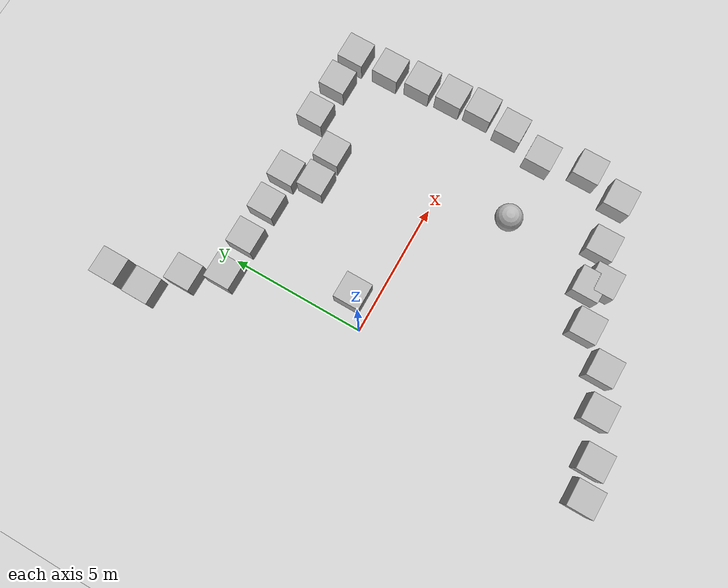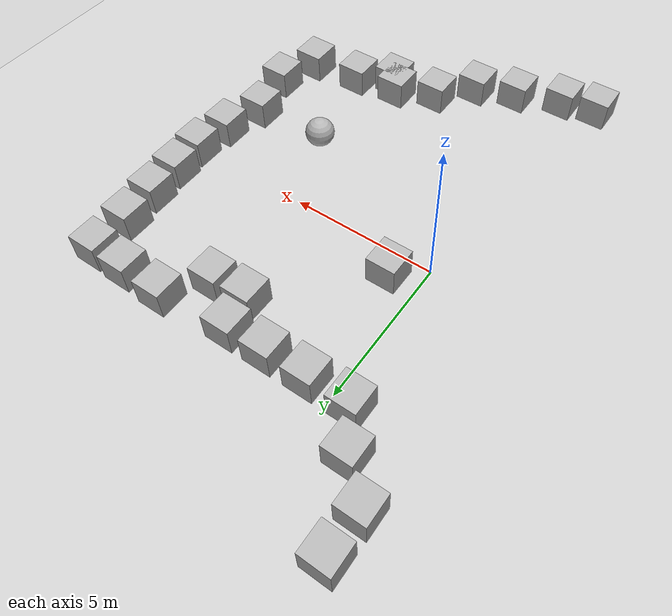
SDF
<sdf version='1.10'>
  <world name='empty'>
    <physics name='1ms' type='ignored'>
      <max_step_size>0.001</max_step_size>
      <real_time_factor>1</real_time_factor>
      <real_time_update_rate>1000</real_time_update_rate>
    </physics>
    <plugin name='gz::sim::systems::Physics' filename='gz-sim-physics-system'/>
    <plugin name='gz::sim::systems::UserCommands' filename='gz-sim-user-commands-system'/>
    <plugin name='gz::sim::systems::SceneBroadcaster' filename='gz-sim-scene-broadcaster-system'/>
    <plugin name='gz::sim::systems::Contact' filename='gz-sim-contact-system'/>
    <gravity>0 0 -9.8000000000000007</gravity>
    <magnetic_field>5.5644999999999998e-06 2.2875799999999999e-05 -4.2388400000000002e-05</magnetic_field>
    <atmosphere type='adiabatic'/>
    <scene>
      <ambient>0.400000006 0.400000006 0.400000006 1</ambient>
      <background>0.699999988 0.699999988 0.699999988 1</background>
      <shadows>true</shadows>
    </scene>
    <model name='ground_plane'>
      <static>true</static>
      <link name='link'>
        <collision name='collision'>
          <geometry>
            <plane>
              <normal>0 0 1</normal>
              <size>100 100</size>
            </plane>
          </geometry>
          <surface>
            <friction>
              <ode/>
            </friction>
            <bounce/>
            <contact/>
          </surface>
        </collision>
        <visual name='visual'>
          <geometry>
            <plane>
              <normal>0 0 1</normal>
              <size>100 100</size>
            </plane>
          </geometry>
          <material>
            <ambient>0.800000012 0.800000012 0.800000012 1</ambient>
            <diffuse>0.800000012 0.800000012 0.800000012 1</diffuse>
            <specular>0.800000012 0.800000012 0.800000012 1</specular>
          </material>
        </visual>
        <pose>0 0 0 0 0 0</pose>
        <inertial>
          <pose>0 0 0 0 0 0</pose>
          <mass>1</mass>
          <inertia>
            <ixx>1</ixx>
            <ixy>0</ixy>
            <ixz>0</ixz>
            <iyy>1</iyy>
            <iyz>0</iyz>
            <izz>1</izz>
          </inertia>
        </inertial>
        <enable_wind>false</enable_wind>
      </link>
      <pose>0 0 0 0 0 0</pose>
      <self_collide>false</self_collide>
    </model>
    <model name='box'>
      <pose>2.2569398311905928 5.0348688227095604 0.49999999990199806 6.2287739151293738e-22 9.3279666454713669e-22 -3.6315533669320137e-22</pose>
      <link name='box_link'>
        <inertial>
          <inertia>
            <ixx>0.16666</ixx>
            <ixy>0</ixy>
            <ixz>0</ixz>
            <iyy>0.16666</iyy>
            <iyz>0</iyz>
            <izz>0.16666</izz>
          </inertia>
          <mass>1</mass>
          <pose>0 0 0 0 0 0</pose>
        </inertial>
        <collision name='box_collision'>
          <geometry>
            <box>
              <size>1 1 1</size>
            </box>
          </geometry>
          <surface>
            <friction>
              <ode/>
            </friction>
            <bounce/>
            <contact/>
          </surface>
        </collision>
        <visual name='box_visual'>
          <geometry>
            <box>
              <size>1 1 1</size>
            </box>
          </geometry>
          <material>
            <ambient>0.300000012 0.300000012 0.300000012 1</ambient>
            <diffuse>0.699999988 0.699999988 0.699999988 1</diffuse>
            <specular>1 1 1 1</specular>
          </material>
        </visual>
        <pose>0 0 0 0 0 0</pose>
        <enable_wind>false</enable_wind>
      </link>
      <static>false</static>
      <self_collide>false</self_collide>
    </model>
    <model name='box_0'>
      <pose>0.83646005392074585 5.0257601737976074 0.49999999990199806 6.2287739151293738e-22 9.3279666454713669e-22 -3.6315533669320137e-22</pose>
      <link name='box_link'>
        <inertial>
          <inertia>
            <ixx>0.16666</ixx>
            <ixy>0</ixy>
            <ixz>0</ixz>
            <iyy>0.16666</iyy>
            <iyz>0</iyz>
            <izz>0.16666</izz>
          </inertia>
          <mass>1</mass>
          <pose>0 0 0 0 0 0</pose>
        </inertial>
        <collision name='box_collision'>
          <geometry>
            <box>
              <size>1 1 1</size>
            </box>
          </geometry>
          <surface>
            <friction>
              <ode/>
            </friction>
            <bounce/>
            <contact/>
          </surface>
        </collision>
        <visual name='box_visual'>
          <geometry>
            <box>
              <size>1 1 1</size>
            </box>
          </geometry>
          <material>
            <ambient>0.300000012 0.300000012 0.300000012 1</ambient>
            <diffuse>0.699999988 0.699999988 0.699999988 1</diffuse>
            <specular>1 1 1 1</specular>
          </material>
        </visual>
        <pose>0 0 0 0 0 0</pose>
        <enable_wind>false</enable_wind>
      </link>
      <static>false</static>
      <self_collide>false</self_collide>
    </model>
    <model name='box_1'>
      <pose>3.6105716166089934 5.0471821156153407 0.49999999990199806 6.2287739151293738e-22 9.3279666454713669e-22 -3.6315533669320137e-22</pose>
      <link name='box_link'>
        <inertial>
          <inertia>
            <ixx>0.16666</ixx>
            <ixy>0</ixy>
            <ixz>0</ixz>
            <iyy>0.16666</iyy>
            <iyz>0</iyz>
            <izz>0.16666</izz>
          </inertia>
          <mass>1</mass>
          <pose>0 0 0 0 0 0</pose>
        </inertial>
        <collision name='box_collision'>
          <geometry>
            <box>
              <size>1 1 1</size>
            </box>
          </geometry>
          <surface>
            <friction>
              <ode/>
            </friction>
            <bounce/>
            <contact/>
          </surface>
        </collision>
        <visual name='box_visual'>
          <geometry>
            <box>
              <size>1 1 1</size>
            </box>
          </geometry>
          <material>
            <ambient>0.300000012 0.300000012 0.300000012 1</ambient>
            <diffuse>0.699999988 0.699999988 0.699999988 1</diffuse>
            <specular>1 1 1 1</specular>
          </material>
        </visual>
        <pose>0 0 0 0 0 0</pose>
        <enable_wind>false</enable_wind>
      </link>
      <static>false</static>
      <self_collide>false</self_collide>
    </model>
    <model name='box_2'>
      <pose>3.8407888814182876 3.95952922372406 0.49999999990199806 1.380058407524736e-21 -4.0566468528448383e-21 6.0579372938736199e-22</pose>
      <link name='box_link'>
        <inertial>
          <inertia>
            <ixx>0.16666</ixx>
            <ixy>0</ixy>
            <ixz>0</ixz>
            <iyy>0.16666</iyy>
            <iyz>0</iyz>
            <izz>0.16666</izz>
          </inertia>
          <mass>1</mass>
          <pose>0 0 0 0 0 0</pose>
        </inertial>
        <collision name='box_collision'>
          <geometry>
            <box>
              <size>1 1 1</size>
            </box>
          </geometry>
          <surface>
            <friction>
              <ode/>
            </friction>
            <bounce/>
            <contact/>
          </surface>
        </collision>
        <visual name='box_visual'>
          <geometry>
            <box>
              <size>1 1 1</size>
            </box>
          </geometry>
          <material>
            <ambient>0.300000012 0.300000012 0.300000012 1</ambient>
            <diffuse>0.699999988 0.699999988 0.699999988 1</diffuse>
            <specular>1 1 1 1</specular>
          </material>
        </visual>
        <pose>0 0 0 0 0 0</pose>
        <enable_wind>false</enable_wind>
      </link>
      <static>false</static>
      <self_collide>false</self_collide>
    </model>
    <model name='box_3'>
      <pose>5.0316362940730848 4.0090687339777773 0.49999999990199806 6.2287739151293738e-22 9.3279666454713669e-22 -3.6315533669320137e-22</pose>
      <link name='box_link'>
        <inertial>
          <inertia>
            <ixx>0.16666</ixx>
            <ixy>0</ixy>
            <ixz>0</ixz>
            <iyy>0.16666</iyy>
            <iyz>0</iyz>
            <izz>0.16666</izz>
          </inertia>
          <mass>1</mass>
          <pose>0 0 0 0 0 0</pose>
        </inertial>
        <collision name='box_collision'>
          <geometry>
            <box>
              <size>1 1 1</size>
            </box>
          </geometry>
          <surface>
            <friction>
              <ode/>
            </friction>
            <bounce/>
            <contact/>
          </surface>
        </collision>
        <visual name='box_visual'>
          <geometry>
            <box>
              <size>1 1 1</size>
            </box>
          </geometry>
          <material>
            <ambient>0.300000012 0.300000012 0.300000012 1</ambient>
            <diffuse>0.699999988 0.699999988 0.699999988 1</diffuse>
            <specular>1 1 1 1</specular>
          </material>
        </visual>
        <pose>0 0 0 0 0 0</pose>
        <enable_wind>false</enable_wind>
      </link>
      <static>false</static>
      <self_collide>false</self_collide>
    </model>
    <model name='box_5'>
      <pose>0.99684734049796964 0.80879308178513032 0.49999999990199806 6.2287739151293738e-22 9.3279666454713669e-22 -3.6315533669320137e-22</pose>
      <link name='box_link'>
        <inertial>
          <inertia>
            <ixx>0.16666</ixx>
            <ixy>0</ixy>
            <ixz>0</ixz>
            <iyy>0.16666</iyy>
            <iyz>0</iyz>
            <izz>0.16666</izz>
          </inertia>
          <mass>1</mass>
          <pose>0 0 0 0 0 0</pose>
        </inertial>
        <collision name='box_collision'>
          <geometry>
            <box>
              <size>1 1 1</size>
            </box>
          </geometry>
          <surface>
            <friction>
              <ode/>
            </friction>
            <bounce/>
            <contact/>
          </surface>
        </collision>
        <visual name='box_visual'>
          <geometry>
            <box>
              <size>1 1 1</size>
            </box>
          </geometry>
          <material>
            <ambient>0.300000012 0.300000012 0.300000012 1</ambient>
            <diffuse>0.699999988 0.699999988 0.699999988 1</diffuse>
            <specular>1 1 1 1</specular>
          </material>
        </visual>
        <pose>0 0 0 0 0 0</pose>
        <enable_wind>false</enable_wind>
      </link>
      <static>false</static>
      <self_collide>false</self_collide>
    </model>
    <model name='box_4'>
      <pose>6.0185577340870804 5.2582690011451962 0.49999999990199806 6.2287739151293738e-22 9.3279666454713669e-22 -3.6315533669320137e-22</pose>
      <link name='box_link'>
        <inertial>
          <inertia>
            <ixx>0.16666</ixx>
            <ixy>0</ixy>
            <ixz>0</ixz>
            <iyy>0.16666</iyy>
            <iyz>0</iyz>
            <izz>0.16666</izz>
          </inertia>
          <mass>1</mass>
          <pose>0 0 0 0 0 0</pose>
        </inertial>
        <collision name='box_collision'>
          <geometry>
            <box>
              <size>1 1 1</size>
            </box>
          </geometry>
          <surface>
            <friction>
              <ode/>
            </friction>
            <bounce/>
            <contact/>
          </surface>
        </collision>
        <visual name='box_visual'>
          <geometry>
            <box>
              <size>1 1 1</size>
            </box>
          </geometry>
          <material>
            <ambient>0.300000012 0.300000012 0.300000012 1</ambient>
            <diffuse>0.699999988 0.699999988 0.699999988 1</diffuse>
            <specular>1 1 1 1</specular>
          </material>
        </visual>
        <pose>0 0 0 0 0 0</pose>
        <enable_wind>false</enable_wind>
      </link>
      <static>false</static>
      <self_collide>false</self_collide>
    </model>
    <model name='box_6'>
      <pose>7.4804304388761267 5.1946206614675354 0.5 0 0 0</pose>
      <link name='box_link'>
        <inertial>
          <inertia>
            <ixx>0.16666</ixx>
            <ixy>0</ixy>
            <ixz>0</ixz>
            <iyy>0.16666</iyy>
            <iyz>0</iyz>
            <izz>0.16666</izz>
          </inertia>
          <mass>1</mass>
          <pose>0 0 0 0 0 0</pose>
        </inertial>
        <collision name='box_collision'>
          <geometry>
            <box>
              <size>1 1 1</size>
            </box>
          </geometry>
          <surface>
            <friction>
              <ode/>
            </friction>
            <bounce/>
            <contact/>
          </surface>
        </collision>
        <visual name='box_visual'>
          <geometry>
            <box>
              <size>1 1 1</size>
            </box>
          </geometry>
          <material>
            <ambient>0.300000012 0.300000012 0.300000012 1</ambient>
            <diffuse>0.699999988 0.699999988 0.699999988 1</diffuse>
            <specular>1 1 1 1</specular>
          </material>
        </visual>
        <pose>0 0 0 0 0 0</pose>
        <enable_wind>false</enable_wind>
      </link>
      <static>false</static>
      <self_collide>false</self_collide>
    </model>
    <model name='box_7'>
      <pose>8.7344488679392711 5.1429913367366007 0.5 0 0 0</pose>
      <link name='box_link'>
        <inertial>
          <inertia>
            <ixx>0.16666</ixx>
            <ixy>0</ixy>
            <ixz>0</ixz>
            <iyy>0.16666</iyy>
            <iyz>0</iyz>
            <izz>0.16666</izz>
          </inertia>
          <mass>1</mass>
          <pose>0 0 0 0 0 0</pose>
        </inertial>
        <collision name='box_collision'>
          <geometry>
            <box>
              <size>1 1 1</size>
            </box>
          </geometry>
          <surface>
            <friction>
              <ode/>
            </friction>
            <bounce/>
            <contact/>
          </surface>
        </collision>
        <visual name='box_visual'>
          <geometry>
            <box>
              <size>1 1 1</size>
            </box>
          </geometry>
          <material>
            <ambient>0.300000012 0.300000012 0.300000012 1</ambient>
            <diffuse>0.699999988 0.699999988 0.699999988 1</diffuse>
            <specular>1 1 1 1</specular>
          </material>
        </visual>
        <pose>0 0 0 0 0 0</pose>
        <enable_wind>false</enable_wind>
      </link>
      <static>false</static>
      <self_collide>false</self_collide>
    </model>
    <model name='box_8'>
      <pose>8.8421087742017939 3.7497887392147895 0.5 0 0 0</pose>
      <link name='box_link'>
        <inertial>
          <inertia>
            <ixx>0.16666</ixx>
            <ixy>0</ixy>
            <ixz>0</ixz>
            <iyy>0.16666</iyy>
            <iyz>0</iyz>
            <izz>0.16666</izz>
          </inertia>
          <mass>1</mass>
          <pose>0 0 0 0 0 0</pose>
        </inertial>
        <collision name='box_collision'>
          <geometry>
            <box>
              <size>1 1 1</size>
            </box>
          </geometry>
          <surface>
            <friction>
              <ode/>
            </friction>
            <bounce/>
            <contact/>
          </surface>
        </collision>
        <visual name='box_visual'>
          <geometry>
            <box>
              <size>1 1 1</size>
            </box>
          </geometry>
          <material>
            <ambient>0.300000012 0.300000012 0.300000012 1</ambient>
            <diffuse>0.699999988 0.699999988 0.699999988 1</diffuse>
            <specular>1 1 1 1</specular>
          </material>
        </visual>
        <pose>0 0 0 0 0 0</pose>
        <enable_wind>false</enable_wind>
      </link>
      <static>false</static>
      <self_collide>false</self_collide>
    </model>
    <model name='box_9'>
      <pose>8.9852716071797207 2.4900610660292903 0.5 0 0 0</pose>
      <link name='box_link'>
        <inertial>
          <inertia>
            <ixx>0.16666</ixx>
            <ixy>0</ixy>
            <ixz>0</ixz>
            <iyy>0.16666</iyy>
            <iyz>0</iyz>
            <izz>0.16666</izz>
          </inertia>
          <mass>1</mass>
          <pose>0 0 0 0 0 0</pose>
        </inertial>
        <collision name='box_collision'>
          <geometry>
            <box>
              <size>1 1 1</size>
            </box>
          </geometry>
          <surface>
            <friction>
              <ode/>
            </friction>
            <bounce/>
            <contact/>
          </surface>
        </collision>
        <visual name='box_visual'>
          <geometry>
            <box>
              <size>1 1 1</size>
            </box>
          </geometry>
          <material>
            <ambient>0.300000012 0.300000012 0.300000012 1</ambient>
            <diffuse>0.699999988 0.699999988 0.699999988 1</diffuse>
            <specular>1 1 1 1</specular>
          </material>
        </visual>
        <pose>0 0 0 0 0 0</pose>
        <enable_wind>false</enable_wind>
      </link>
      <static>false</static>
      <self_collide>false</self_collide>
    </model>
    <model name='box_10'>
      <pose>-0.61243771166478034 5.0236192421680341 0.5 0 0 0</pose>
      <link name='box_link'>
        <inertial>
          <inertia>
            <ixx>0.16666</ixx>
            <ixy>0</ixy>
            <ixz>0</ixz>
            <iyy>0.16666</iyy>
            <iyz>0</iyz>
            <izz>0.16666</izz>
          </inertia>
          <mass>1</mass>
          <pose>0 0 0 0 0 0</pose>
        </inertial>
        <collision name='box_collision'>
          <geometry>
            <box>
              <size>1 1 1</size>
            </box>
          </geometry>
          <surface>
            <friction>
              <ode/>
            </friction>
            <bounce/>
            <contact/>
          </surface>
        </collision>
        <visual name='box_visual'>
          <geometry>
            <box>
              <size>1 1 1</size>
            </box>
          </geometry>
          <material>
            <ambient>0.300000012 0.300000012 0.300000012 1</ambient>
            <diffuse>0.699999988 0.699999988 0.699999988 1</diffuse>
            <specular>1 1 1 1</specular>
          </material>
        </visual>
        <pose>0 0 0 0 0 0</pose>
        <enable_wind>false</enable_wind>
      </link>
      <static>false</static>
      <self_collide>false</self_collide>
    </model>
    <model name='box_11'>
      <pose>9.0858540291439187 1.2734295602808534 0.5 0 0 0</pose>
      <link name='box_link'>
        <inertial>
          <inertia>
            <ixx>0.16666</ixx>
            <ixy>0</ixy>
            <ixz>0</ixz>
            <iyy>0.16666</iyy>
            <iyz>0</iyz>
            <izz>0.16666</izz>
          </inertia>
          <mass>1</mass>
          <pose>0 0 0 0 0 0</pose>
        </inertial>
        <collision name='box_collision'>
          <geometry>
            <box>
              <size>1 1 1</size>
            </box>
          </geometry>
          <surface>
            <friction>
              <ode/>
            </friction>
            <bounce/>
            <contact/>
          </surface>
        </collision>
        <visual name='box_visual'>
          <geometry>
            <box>
              <size>1 1 1</size>
            </box>
          </geometry>
          <material>
            <ambient>0.300000012 0.300000012 0.300000012 1</ambient>
            <diffuse>0.699999988 0.699999988 0.699999988 1</diffuse>
            <specular>1 1 1 1</specular>
          </material>
        </visual>
        <pose>0 0 0 0 0 0</pose>
        <enable_wind>false</enable_wind>
      </link>
      <static>false</static>
      <self_collide>false</self_collide>
    </model>
    <model name='box_12'>
      <pose>9.1666676473965261 0.11151028239209015 0.5 0 0 0</pose>
      <link name='box_link'>
        <inertial>
          <inertia>
            <ixx>0.16666</ixx>
            <ixy>0</ixy>
            <ixz>0</ixz>
            <iyy>0.16666</iyy>
            <iyz>0</iyz>
            <izz>0.16666</izz>
          </inertia>
          <mass>1</mass>
          <pose>0 0 0 0 0 0</pose>
        </inertial>
        <collision name='box_collision'>
          <geometry>
            <box>
              <size>1 1 1</size>
            </box>
          </geometry>
          <surface>
            <friction>
              <ode/>
            </friction>
            <bounce/>
            <contact/>
          </surface>
        </collision>
        <visual name='box_visual'>
          <geometry>
            <box>
              <size>1 1 1</size>
            </box>
          </geometry>
          <material>
            <ambient>0.300000012 0.300000012 0.300000012 1</ambient>
            <diffuse>0.699999988 0.699999988 0.699999988 1</diffuse>
            <specular>1 1 1 1</specular>
          </material>
        </visual>
        <pose>0 0 0 0 0 0</pose>
        <enable_wind>false</enable_wind>
      </link>
      <static>false</static>
      <self_collide>false</self_collide>
    </model>
    <model name='box_13'>
      <pose>9.0075898105088861 -1.1614971585419975 0.5 0 0 0</pose>
      <link name='box_link'>
        <inertial>
          <inertia>
            <ixx>0.16666</ixx>
            <ixy>0</ixy>
            <ixz>0</ixz>
            <iyy>0.16666</iyy>
            <iyz>0</iyz>
            <izz>0.16666</izz>
          </inertia>
          <mass>1</mass>
          <pose>0 0 0 0 0 0</pose>
        </inertial>
        <collision name='box_collision'>
          <geometry>
            <box>
              <size>1 1 1</size>
            </box>
          </geometry>
          <surface>
            <friction>
              <ode/>
            </friction>
            <bounce/>
            <contact/>
          </surface>
        </collision>
        <visual name='box_visual'>
          <geometry>
            <box>
              <size>1 1 1</size>
            </box>
          </geometry>
          <material>
            <ambient>0.300000012 0.300000012 0.300000012 1</ambient>
            <diffuse>0.699999988 0.699999988 0.699999988 1</diffuse>
            <specular>1 1 1 1</specular>
          </material>
        </visual>
        <pose>0 0 0 0 0 0</pose>
        <enable_wind>false</enable_wind>
      </link>
      <static>false</static>
      <self_collide>false</self_collide>
    </model>
    <model name='box_14'>
      <pose>8.6230900090411691 -2.5784171689003026 0.5 0 0 0</pose>
      <link name='box_link'>
        <inertial>
          <inertia>
            <ixx>0.16666</ixx>
            <ixy>0</ixy>
            <ixz>0</ixz>
            <iyy>0.16666</iyy>
            <iyz>0</iyz>
            <izz>0.16666</izz>
          </inertia>
          <mass>1</mass>
          <pose>0 0 0 0 0 0</pose>
        </inertial>
        <collision name='box_collision'>
          <geometry>
            <box>
              <size>1 1 1</size>
            </box>
          </geometry>
          <surface>
            <friction>
              <ode/>
            </friction>
            <bounce/>
            <contact/>
          </surface>
        </collision>
        <visual name='box_visual'>
          <geometry>
            <box>
              <size>1 1 1</size>
            </box>
          </geometry>
          <material>
            <ambient>0.300000012 0.300000012 0.300000012 1</ambient>
            <diffuse>0.699999988 0.699999988 0.699999988 1</diffuse>
            <specular>1 1 1 1</specular>
          </material>
        </visual>
        <pose>0 0 0 0 0 0</pose>
        <enable_wind>false</enable_wind>
      </link>
      <static>false</static>
      <self_collide>false</self_collide>
    </model>
    <model name='box_15'>
      <pose>9.0075900162455707 -4.2682678040455126 0.5 0 0 0</pose>
      <link name='box_link'>
        <inertial>
          <inertia>
            <ixx>0.16666</ixx>
            <ixy>0</ixy>
            <ixz>0</ixz>
            <iyy>0.16666</iyy>
            <iyz>0</iyz>
            <izz>0.16666</izz>
          </inertia>
          <mass>1</mass>
          <pose>0 0 0 0 0 0</pose>
        </inertial>
        <collision name='box_collision'>
          <geometry>
            <box>
              <size>1 1 1</size>
            </box>
          </geometry>
          <surface>
            <friction>
              <ode/>
            </friction>
            <bounce/>
            <contact/>
          </surface>
        </collision>
        <visual name='box_visual'>
          <geometry>
            <box>
              <size>1 1 1</size>
            </box>
          </geometry>
          <material>
            <ambient>0.300000012 0.300000012 0.300000012 1</ambient>
            <diffuse>0.699999988 0.699999988 0.699999988 1</diffuse>
            <specular>1 1 1 1</specular>
          </material>
        </visual>
        <pose>0 0 0 0 0 0</pose>
        <enable_wind>false</enable_wind>
      </link>
      <static>false</static>
      <self_collide>false</self_collide>
    </model>
    <model name='box_16'>
      <pose>8.5494057168517692 -5.7103632628861467 0.5 0 0 0</pose>
      <link name='box_link'>
        <inertial>
          <inertia>
            <ixx>0.16666</ixx>
            <ixy>0</ixy>
            <ixz>0</ixz>
            <iyy>0.16666</iyy>
            <iyz>0</iyz>
            <izz>0.16666</izz>
          </inertia>
          <mass>1</mass>
          <pose>0 0 0 0 0 0</pose>
        </inertial>
        <collision name='box_collision'>
          <geometry>
            <box>
              <size>1 1 1</size>
            </box>
          </geometry>
          <surface>
            <friction>
              <ode/>
            </friction>
            <bounce/>
            <contact/>
          </surface>
        </collision>
        <visual name='box_visual'>
          <geometry>
            <box>
              <size>1 1 1</size>
            </box>
          </geometry>
          <material>
            <ambient>0.300000012 0.300000012 0.300000012 1</ambient>
            <diffuse>0.699999988 0.699999988 0.699999988 1</diffuse>
            <specular>1 1 1 1</specular>
          </material>
        </visual>
        <pose>0 0 0 0 0 0</pose>
        <enable_wind>false</enable_wind>
      </link>
      <static>false</static>
      <self_collide>false</self_collide>
    </model>
    <model name='box_17'>
      <pose>6.7862559620230183 -5.9285019190269663 0.5 0 0 0</pose>
      <link name='box_link'>
        <inertial>
          <inertia>
            <ixx>0.16666</ixx>
            <ixy>0</ixy>
            <ixz>0</ixz>
            <iyy>0.16666</iyy>
            <iyz>0</iyz>
            <izz>0.16666</izz>
          </inertia>
          <mass>1</mass>
          <pose>0 0 0 0 0 0</pose>
        </inertial>
        <collision name='box_collision'>
          <geometry>
            <box>
              <size>1 1 1</size>
            </box>
          </geometry>
          <surface>
            <friction>
              <ode/>
            </friction>
            <bounce/>
            <contact/>
          </surface>
        </collision>
        <visual name='box_visual'>
          <geometry>
            <box>
              <size>1 1 1</size>
            </box>
          </geometry>
          <material>
            <ambient>0.300000012 0.300000012 0.300000012 1</ambient>
            <diffuse>0.699999988 0.699999988 0.699999988 1</diffuse>
            <specular>1 1 1 1</specular>
          </material>
        </visual>
        <pose>0 0 0 0 0 0</pose>
        <enable_wind>false</enable_wind>
      </link>
      <static>false</static>
      <self_collide>false</self_collide>
    </model>
    <model name='box_18'>
      <pose>5.2569930042972945 -6.15298079400727 0.5 0 0 0</pose>
      <link name='box_link'>
        <inertial>
          <inertia>
            <ixx>0.16666</ixx>
            <ixy>0</ixy>
            <ixz>0</ixz>
            <iyy>0.16666</iyy>
            <iyz>0</iyz>
            <izz>0.16666</izz>
          </inertia>
          <mass>1</mass>
          <pose>0 0 0 0 0 0</pose>
        </inertial>
        <collision name='box_collision'>
          <geometry>
            <box>
              <size>1 1 1</size>
            </box>
          </geometry>
          <surface>
            <friction>
              <ode/>
            </friction>
            <bounce/>
            <contact/>
          </surface>
        </collision>
        <visual name='box_visual'>
          <geometry>
            <box>
              <size>1 1 1</size>
            </box>
          </geometry>
          <material>
            <ambient>0.300000012 0.300000012 0.300000012 1</ambient>
            <diffuse>0.699999988 0.699999988 0.699999988 1</diffuse>
            <specular>1 1 1 1</specular>
          </material>
        </visual>
        <pose>0 0 0 0 0 0</pose>
        <enable_wind>false</enable_wind>
      </link>
      <static>false</static>
      <self_collide>false</self_collide>
    </model>
    <model name='box_19'>
      <pose>3.9370879549838893 -6.7282043069356945 0.5 0 0 0</pose>
      <link name='box_link'>
        <inertial>
          <inertia>
            <ixx>0.16666</ixx>
            <ixy>0</ixy>
            <ixz>0</ixz>
            <iyy>0.16666</iyy>
            <iyz>0</iyz>
            <izz>0.16666</izz>
          </inertia>
          <mass>1</mass>
          <pose>0 0 0 0 0 0</pose>
        </inertial>
        <collision name='box_collision'>
          <geometry>
            <box>
              <size>1 1 1</size>
            </box>
          </geometry>
          <surface>
            <friction>
              <ode/>
            </friction>
            <bounce/>
            <contact/>
          </surface>
        </collision>
        <visual name='box_visual'>
          <geometry>
            <box>
              <size>1 1 1</size>
            </box>
          </geometry>
          <material>
            <ambient>0.300000012 0.300000012 0.300000012 1</ambient>
            <diffuse>0.699999988 0.699999988 0.699999988 1</diffuse>
            <specular>1 1 1 1</specular>
          </material>
        </visual>
        <pose>0 0 0 0 0 0</pose>
        <enable_wind>false</enable_wind>
      </link>
      <static>false</static>
      <self_collide>false</self_collide>
    </model>
    <model name='box_20'>
      <pose>2.9250889137917122 -7.8893345964303112 0.5 0 0 0</pose>
      <link name='box_link'>
        <inertial>
          <inertia>
            <ixx>0.16666</ixx>
            <ixy>0</ixy>
            <ixz>0</ixz>
            <iyy>0.16666</iyy>
            <iyz>0</iyz>
            <izz>0.16666</izz>
          </inertia>
          <mass>1</mass>
          <pose>0 0 0 0 0 0</pose>
        </inertial>
        <collision name='box_collision'>
          <geometry>
            <box>
              <size>1 1 1</size>
            </box>
          </geometry>
          <surface>
            <friction>
              <ode/>
            </friction>
            <bounce/>
            <contact/>
          </surface>
        </collision>
        <visual name='box_visual'>
          <geometry>
            <box>
              <size>1 1 1</size>
            </box>
          </geometry>
          <material>
            <ambient>0.300000012 0.300000012 0.300000012 1</ambient>
            <diffuse>0.699999988 0.699999988 0.699999988 1</diffuse>
            <specular>1 1 1 1</specular>
          </material>
        </visual>
        <pose>0 0 0 0 0 0</pose>
        <enable_wind>false</enable_wind>
      </link>
      <static>false</static>
      <self_collide>false</self_collide>
    </model>
    <model name='box_21'>
      <pose>-1.3342246008296326 6.1905760065128881 0.5 0 0 0</pose>
      <link name='box_link'>
        <inertial>
          <inertia>
            <ixx>0.16666</ixx>
            <ixy>0</ixy>
            <ixz>0</ixz>
            <iyy>0.16666</iyy>
            <iyz>0</iyz>
            <izz>0.16666</izz>
          </inertia>
          <mass>1</mass>
          <pose>0 0 0 0 0 0</pose>
        </inertial>
        <collision name='box_collision'>
          <geometry>
            <box>
              <size>1 1 1</size>
            </box>
          </geometry>
          <surface>
            <friction>
              <ode/>
            </friction>
            <bounce/>
            <contact/>
          </surface>
        </collision>
        <visual name='box_visual'>
          <geometry>
            <box>
              <size>1 1 1</size>
            </box>
          </geometry>
          <material>
            <ambient>0.300000012 0.300000012 0.300000012 1</ambient>
            <diffuse>0.699999988 0.699999988 0.699999988 1</diffuse>
            <specular>1 1 1 1</specular>
          </material>
        </visual>
        <pose>0 0 0 0 0 0</pose>
        <enable_wind>false</enable_wind>
      </link>
      <static>false</static>
      <self_collide>false</self_collide>
    </model>
    <model name='box_22'>
      <pose>1.5502952304414146 -8.3859790611516978 0.5 0 0 0</pose>
      <link name='box_link'>
        <inertial>
          <inertia>
            <ixx>0.16666</ixx>
            <ixy>0</ixy>
            <ixz>0</ixz>
            <iyy>0.16666</iyy>
            <iyz>0</iyz>
            <izz>0.16666</izz>
          </inertia>
          <mass>1</mass>
          <pose>0 0 0 0 0 0</pose>
        </inertial>
        <collision name='box_collision'>
          <geometry>
            <box>
              <size>1 1 1</size>
            </box>
          </geometry>
          <surface>
            <friction>
              <ode/>
            </friction>
            <bounce/>
            <contact/>
          </surface>
        </collision>
        <visual name='box_visual'>
          <geometry>
            <box>
              <size>1 1 1</size>
            </box>
          </geometry>
          <material>
            <ambient>0.300000012 0.300000012 0.300000012 1</ambient>
            <diffuse>0.699999988 0.699999988 0.699999988 1</diffuse>
            <specular>1 1 1 1</specular>
          </material>
        </visual>
        <pose>0 0 0 0 0 0</pose>
        <enable_wind>false</enable_wind>
      </link>
      <static>false</static>
      <self_collide>false</self_collide>
    </model>
    <model name='sphere'>
      <pose>6.090827999671518 -2.6219771580997362 0.5 0 0 0</pose>
      <link name='sphere_link'>
        <inertial>
          <inertia>
            <ixx>0.10000000000000001</ixx>
            <ixy>0</ixy>
            <ixz>0</ixz>
            <iyy>0.10000000000000001</iyy>
            <iyz>0</iyz>
            <izz>0.10000000000000001</izz>
          </inertia>
          <mass>1</mass>
          <pose>0 0 0 0 0 0</pose>
        </inertial>
        <collision name='sphere_collision'>
          <geometry>
            <sphere>
              <radius>0.5</radius>
            </sphere>
          </geometry>
          <surface>
            <friction>
              <ode/>
            </friction>
            <bounce/>
            <contact/>
          </surface>
        </collision>
        <visual name='sphere_visual'>
          <geometry>
            <sphere>
              <radius>0.5</radius>
            </sphere>
          </geometry>
          <material>
            <ambient>0.300000012 0.300000012 0.300000012 1</ambient>
            <diffuse>0.699999988 0.699999988 0.699999988 1</diffuse>
            <specular>1 1 1 1</specular>
          </material>
        </visual>
        <pose>0 0 0 0 0 0</pose>
        <enable_wind>false</enable_wind>
      </link>
      <static>false</static>
      <self_collide>false</self_collide>
    </model>
    <model name='box_23'>
      <pose>-2.4348573673833735 7.1858341997257469 0.5 0 0 0</pose>
      <link name='box_link'>
        <inertial>
          <inertia>
            <ixx>0.16666</ixx>
            <ixy>0</ixy>
            <ixz>0</ixz>
            <iyy>0.16666</iyy>
            <iyz>0</iyz>
            <izz>0.16666</izz>
          </inertia>
          <mass>1</mass>
          <pose>0 0 0 0 0 0</pose>
        </inertial>
        <collision name='box_collision'>
          <geometry>
            <box>
              <size>1 1 1</size>
            </box>
          </geometry>
          <surface>
            <friction>
              <ode/>
            </friction>
            <bounce/>
            <contact/>
          </surface>
        </collision>
        <visual name='box_visual'>
          <geometry>
            <box>
              <size>1 1 1</size>
            </box>
          </geometry>
          <material>
            <ambient>0.300000012 0.300000012 0.300000012 1</ambient>
            <diffuse>0.699999988 0.699999988 0.699999988 1</diffuse>
            <specular>1 1 1 1</specular>
          </material>
        </visual>
        <pose>0 0 0 0 0 0</pose>
        <enable_wind>false</enable_wind>
      </link>
      <static>false</static>
      <self_collide>false</self_collide>
    </model>
    <model name='box_24'>
      <pose>-2.4161288596508985 8.5441625785700737 0.5 0 0 0</pose>
      <link name='box_link'>
        <inertial>
          <inertia>
            <ixx>0.16666</ixx>
            <ixy>0</ixy>
            <ixz>0</ixz>
            <iyy>0.16666</iyy>
            <iyz>0</iyz>
            <izz>0.16666</izz>
          </inertia>
          <mass>1</mass>
          <pose>0 0 0 0 0 0</pose>
        </inertial>
        <collision name='box_collision'>
          <geometry>
            <box>
              <size>1 1 1</size>
            </box>
          </geometry>
          <surface>
            <friction>
              <ode/>
            </friction>
            <bounce/>
            <contact/>
          </surface>
        </collision>
        <visual name='box_visual'>
          <geometry>
            <box>
              <size>1 1 1</size>
            </box>
          </geometry>
          <material>
            <ambient>0.300000012 0.300000012 0.300000012 1</ambient>
            <diffuse>0.699999988 0.699999988 0.699999988 1</diffuse>
            <specular>1 1 1 1</specular>
          </material>
        </visual>
        <pose>0 0 0 0 0 0</pose>
        <enable_wind>false</enable_wind>
      </link>
      <static>false</static>
      <self_collide>false</self_collide>
    </model>
    <model name='box_25'>
      <pose>0.027672702738013477 -8.9780948475051474 0.5 0 0 0</pose>
      <link name='box_link'>
        <inertial>
          <inertia>
            <ixx>0.16666</ixx>
            <ixy>0</ixy>
            <ixz>0</ixz>
            <iyy>0.16666</iyy>
            <iyz>0</iyz>
            <izz>0.16666</izz>
          </inertia>
          <mass>1</mass>
          <pose>0 0 0 0 0 0</pose>
        </inertial>
        <collision name='box_collision'>
          <geometry>
            <box>
              <size>1 1 1</size>
            </box>
          </geometry>
          <surface>
            <friction>
              <ode/>
            </friction>
            <bounce/>
            <contact/>
          </surface>
        </collision>
        <visual name='box_visual'>
          <geometry>
            <box>
              <size>1 1 1</size>
            </box>
          </geometry>
          <material>
            <ambient>0.300000012 0.300000012 0.300000012 1</ambient>
            <diffuse>0.699999988 0.699999988 0.699999988 1</diffuse>
            <specular>1 1 1 1</specular>
          </material>
        </visual>
        <pose>0 0 0 0 0 0</pose>
        <enable_wind>false</enable_wind>
      </link>
      <static>false</static>
      <self_collide>false</self_collide>
    </model>
    <model name='box_26'>
      <pose>5.6224595285734225 -6.5552357579556055 0.5 0 0 0</pose>
      <link name='box_link'>
        <inertial>
          <inertia>
            <ixx>0.16666</ixx>
            <ixy>0</ixy>
            <ixz>0</ixz>
            <iyy>0.16666</iyy>
            <iyz>0</iyz>
            <izz>0.16666</izz>
          </inertia>
          <mass>1</mass>
          <pose>0 0 0 0 0 0</pose>
        </inertial>
        <collision name='box_collision'>
          <geometry>
            <box>
              <size>1 1 1</size>
            </box>
          </geometry>
          <surface>
            <friction>
              <ode/>
            </friction>
            <bounce/>
            <contact/>
          </surface>
        </collision>
        <visual name='box_visual'>
          <geometry>
            <box>
              <size>1 1 1</size>
            </box>
          </geometry>
          <material>
            <ambient>0.300000012 0.300000012 0.300000012 1</ambient>
            <diffuse>0.699999988 0.699999988 0.699999988 1</diffuse>
            <specular>1 1 1 1</specular>
          </material>
        </visual>
        <pose>0 0 0 0 0 0</pose>
        <enable_wind>false</enable_wind>
      </link>
      <static>false</static>
      <self_collide>false</self_collide>
    </model>
    <model name='box_27'>
      <pose>-1.171909466779395 -9.2322765130496141 0.5 0 0 0</pose>
      <link name='box_link'>
        <inertial>
          <inertia>
            <ixx>0.16666</ixx>
            <ixy>0</ixy>
            <ixz>0</ixz>
            <iyy>0.16666</iyy>
            <iyz>0</iyz>
            <izz>0.16666</izz>
          </inertia>
          <mass>1</mass>
          <pose>0 0 0 0 0 0</pose>
        </inertial>
        <collision name='box_collision'>
          <geometry>
            <box>
              <size>1 1 1</size>
            </box>
          </geometry>
          <surface>
            <friction>
              <ode/>
            </friction>
            <bounce/>
            <contact/>
          </surface>
        </collision>
        <visual name='box_visual'>
          <geometry>
            <box>
              <size>1 1 1</size>
            </box>
          </geometry>
          <material>
            <ambient>0.300000012 0.300000012 0.300000012 1</ambient>
            <diffuse>0.699999988 0.699999988 0.699999988 1</diffuse>
            <specular>1 1 1 1</specular>
          </material>
        </visual>
        <pose>0 0 0 0 0 0</pose>
        <enable_wind>false</enable_wind>
      </link>
      <static>false</static>
      <self_collide>false</self_collide>
    </model>
    <light name='sun' type='directional'>
      <pose>0 0 10 0 0 0</pose>
      <cast_shadows>true</cast_shadows>
      <intensity>1</intensity>
      <direction>-0.5 0.10000000000000001 -0.90000000000000002</direction>
      <diffuse>0.800000012 0.800000012 0.800000012 1</diffuse>
      <specular>0.200000003 0.200000003 0.200000003 1</specular>
      <attenuation>
        <range>1000</range>
        <linear>0.0099999997764825821</linear>
        <constant>0.89999997615814209</constant>
        <quadratic>0.0010000000474974513</quadratic>
      </attenuation>
      <spot>
        <inner_angle>0</inner_angle>
        <outer_angle>0</outer_angle>
        <falloff>0</falloff>
      </spot>
    </light>
  </world>
</sdf>
